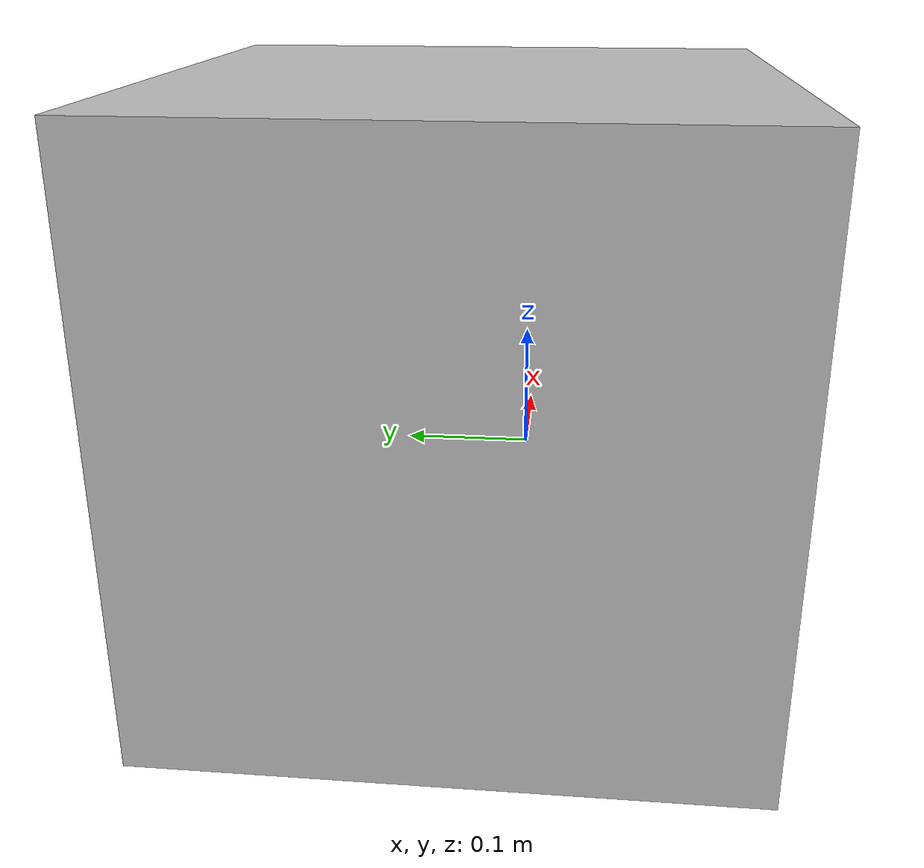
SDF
<?xml version="1.0" ?>
<sdf version="1.5">
  <model name="distorted_camera">
    <link name="link">
      <pose>0.05 0.05 0.05 0 0 0</pose>
      <inertial>
        <mass>0.1</mass>
      </inertial>
      <collision name="collision">
        <geometry>
          <box>
            <size>0.5 0.5 0.5</size>
          </box>
        </geometry>
      </collision>
      <visual name="visual">
        <geometry>
          <box>
            <size>0.5 0.5 0.5</size>
          </box>
        </geometry>
      </visual>
      <sensor name="camera" type="camera">
        <camera>
          <horizontal_fov>1.047</horizontal_fov>
          <image>
            <width>320</width>
            <height>240</height>
          </image>
          <clip>
            <near>0.1</near>
            <far>100</far>
          </clip>
          <save enabled="true">
            <path>~/Gazebo_img/</path>
          </save>
        </camera>
        <always_on>1</always_on>
        <update_rate>1</update_rate>
        <visualize>true</visualize>
      </sensor>
    </link>
  </model>
</sdf>
